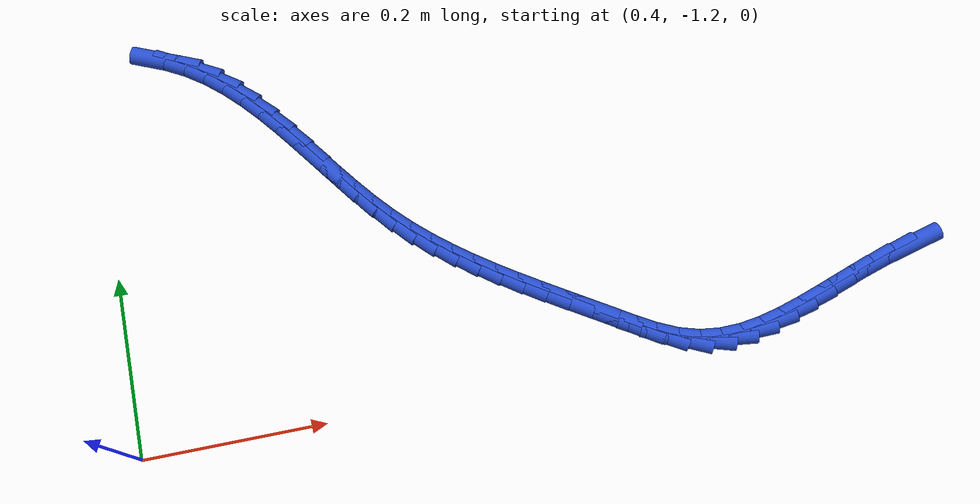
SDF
<sdf version="1.6">
 <world name="default">
  <model name="ground_plane">
   <static>1</static>
   <link name="link">
    <collision name="collision">
     <geometry><plane><normal>0 0 1</normal><size>100 100</size></plane></geometry>
     <surface><friction><ode><mu>100</mu><mu2>50</mu2></ode></friction></surface>
    </collision>
    <visual name="visual">
     <cast_shadows>0</cast_shadows>
     <geometry><plane><normal>0 0 1</normal><size>100 100</size></plane></geometry>
     <material>
      <script><uri>file://media/materials/scripts/gazebo.material</uri><name>Gazebo/WhiteGlow</name></script>
     </material>
    </visual>
   </link>
  </model>
  <model name="line">
   <link name="link_217">
    <pose>1.256067953404397 -1.133034694762733 0.01 0 1.57 0.2588674383470916</pose>
    <collision name="collision">
     <geometry><cylinder><radius>0.01</radius><length>0.08</length></cylinder></geometry>
    </collision>
    <visual name="visual">
     <material>
      <script><name>Gazebo/Blue</name><uri>file://media/materials/scripts/gazebo.material</uri></script>
     </material>
     <geometry><cylinder><radius>0.01</radius><length>0.08</length></cylinder></geometry>
    </visual>
   </link>
   <link name="link_218">
    <pose>1.228334941577375 -1.1403786513357703 0.01 0 1.57 0.30582077177502054</pose>
    <collision name="collision">
     <geometry><cylinder><radius>0.01</radius><length>0.08</length></cylinder></geometry>
    </collision>
    <visual name="visual">
     <material>
      <script><name>Gazebo/Blue</name><uri>file://media/materials/scripts/gazebo.material</uri></script>
     </material>
     <geometry><cylinder><radius>0.01</radius><length>0.08</length></cylinder></geometry>
    </visual>
   </link>
   <link name="link_219">
    <pose>1.201609624626986 -1.1488165175668994 0.01 0 1.57 0.33437206261060864</pose>
    <collision name="collision">
     <geometry><cylinder><radius>0.01</radius><length>0.08</length></cylinder></geometry>
    </collision>
    <visual name="visual">
     <material>
      <script><name>Gazebo/Blue</name><uri>file://media/materials/scripts/gazebo.material</uri></script>
     </material>
     <geometry><cylinder><radius>0.01</radius><length>0.08</length></cylinder></geometry>
    </visual>
   </link>
   <link name="link_220">
    <pose>1.175773861824631 -1.1577923067811169 0.01 0 1.57 0.3432423197108353</pose>
    <collision name="collision">
     <geometry><cylinder><radius>0.01</radius><length>0.08</length></cylinder></geometry>
    </collision>
    <visual name="visual">
     <material>
      <script><name>Gazebo/Blue</name><uri>file://media/materials/scripts/gazebo.material</uri></script>
     </material>
     <geometry><cylinder><radius>0.01</radius><length>0.08</length></cylinder></geometry>
    </visual>
   </link>
   <link name="link_221">
    <pose>1.150709512441711 -1.1667500323034197 0.01 0 1.57 0.33081642744983075</pose>
    <collision name="collision">
     <geometry><cylinder><radius>0.01</radius><length>0.08</length></cylinder></geometry>
    </collision>
    <visual name="visual">
     <material>
      <script><name>Gazebo/Blue</name><uri>file://media/materials/scripts/gazebo.material</uri></script>
     </material>
     <geometry><cylinder><radius>0.01</radius><length>0.08</length></cylinder></geometry>
    </visual>
   </link>
   <link name="link_222">
    <pose>1.1262984357496293 -1.1751337074588064 0.01 0 1.57 0.29494421195318615</pose>
    <collision name="collision">
     <geometry><cylinder><radius>0.01</radius><length>0.08</length></cylinder></geometry>
    </collision>
    <visual name="visual">
     <material>
      <script><name>Gazebo/Blue</name><uri>file://media/materials/scripts/gazebo.material</uri></script>
     </material>
     <geometry><cylinder><radius>0.01</radius><length>0.08</length></cylinder></geometry>
    </visual>
   </link>
   <link name="link_223">
    <pose>1.102422491019786 -1.1823873455722727 0.01 0 1.57 0.23302294589159603</pose>
    <collision name="collision">
     <geometry><cylinder><radius>0.01</radius><length>0.08</length></cylinder></geometry>
    </collision>
    <visual name="visual">
     <material>
      <script><name>Gazebo/Blue</name><uri>file://media/materials/scripts/gazebo.material</uri></script>
     </material>
     <geometry><cylinder><radius>0.01</radius><length>0.08</length></cylinder></geometry>
    </visual>
   </link>
   <link name="link_224">
    <pose>1.0789635375235835 -1.187954959968817 0.01 0 1.57 0.14261707676619337</pose>
    <collision name="collision">
     <geometry><cylinder><radius>0.01</radius><length>0.08</length></cylinder></geometry>
    </collision>
    <visual name="visual">
     <material>
      <script><name>Gazebo/Blue</name><uri>file://media/materials/scripts/gazebo.material</uri></script>
     </material>
     <geometry><cylinder><radius>0.01</radius><length>0.08</length></cylinder></geometry>
    </visual>
   </link>
   <link name="link_225">
    <pose>1.0558034345324232 -1.1912805639734358 0.01 0 1.57 0.022955969754239042</pose>
    <collision name="collision">
     <geometry><cylinder><radius>0.01</radius><length>0.08</length></cylinder></geometry>
    </collision>
    <visual name="visual">
     <material>
      <script><name>Gazebo/Blue</name><uri>file://media/materials/scripts/gazebo.material</uri></script>
     </material>
     <geometry><cylinder><radius>0.01</radius><length>0.08</length></cylinder></geometry>
    </visual>
   </link>
   <link name="link_226">
    <pose>1.0328240413177072 -1.1918081709111272 0.01 0 1.57 -0.12271227933288986</pose>
    <collision name="collision">
     <geometry><cylinder><radius>0.01</radius><length>0.08</length></cylinder></geometry>
    </collision>
    <visual name="visual">
     <material>
      <script><name>Gazebo/Blue</name><uri>file://media/materials/scripts/gazebo.material</uri></script>
     </material>
     <geometry><cylinder><radius>0.01</radius><length>0.08</length></cylinder></geometry>
    </visual>
   </link>
   <link name="link_227">
    <pose>1.0099072171508365 -1.1889817941068876 0.01 0 1.57 -0.2852206664215019</pose>
    <collision name="collision">
     <geometry><cylinder><radius>0.01</radius><length>0.08</length></cylinder></geometry>
    </collision>
    <visual name="visual">
     <material>
      <script><name>Gazebo/Blue</name><uri>file://media/materials/scripts/gazebo.material</uri></script>
     </material>
     <geometry><cylinder><radius>0.01</radius><length>0.08</length></cylinder></geometry>
    </visual>
   </link>
   <link name="link_228">
    <pose>0.9869348665987684 -1.182245951155292 0.01 0 1.57 -0.4340985839575347</pose>
    <collision name="collision">
     <geometry><cylinder><radius>0.01</radius><length>0.08</length></cylinder></geometry>
    </collision>
    <visual name="visual">
     <material>
      <script><name>Gazebo/Blue</name><uri>file://media/materials/scripts/gazebo.material</uri></script>
     </material>
     <geometry><cylinder><radius>0.01</radius><length>0.08</length></cylinder></geometry>
    </visual>
   </link>
   <link name="link_229">
    <pose>0.9638329952323135 -1.1715361304471055 0.01 0 1.57 -0.5222238966851561</pose>
    <collision name="collision">
     <geometry><cylinder><radius>0.01</radius><length>0.08</length></cylinder></geometry>
    </collision>
    <visual name="visual">
     <material>
      <script><name>Gazebo/Blue</name><uri>file://media/materials/scripts/gazebo.material</uri></script>
     </material>
     <geometry><cylinder><radius>0.01</radius><length>0.08</length></cylinder></geometry>
    </visual>
   </link>
   <link name="link_230">
    <pose>0.9406541202397857 -1.1581962579174019 0.01 0 1.57 -0.5551013860419267</pose>
    <collision name="collision">
     <geometry><cylinder><radius>0.01</radius><length>0.08</length></cylinder></geometry>
    </collision>
    <visual name="visual">
     <material>
      <script><name>Gazebo/Blue</name><uri>file://media/materials/scripts/gazebo.material</uri></script>
     </material>
     <geometry><cylinder><radius>0.01</radius><length>0.08</length></cylinder></geometry>
    </visual>
   </link>
   <link name="link_231">
    <pose>0.9174733055958375 -1.1438207618676348 0.01 0 1.57 -0.5518493781717017</pose>
    <collision name="collision">
     <geometry><cylinder><radius>0.01</radius><length>0.08</length></cylinder></geometry>
    </collision>
    <visual name="visual">
     <material>
      <script><name>Gazebo/Blue</name><uri>file://media/materials/scripts/gazebo.material</uri></script>
     </material>
     <geometry><cylinder><radius>0.01</radius><length>0.08</length></cylinder></geometry>
    </visual>
   </link>
   <link name="link_232">
    <pose>0.894368009353113 -1.129595924766891 0.01 0 1.57 -0.5491181605492208</pose>
    <collision name="collision">
     <geometry><cylinder><radius>0.01</radius><length>0.08</length></cylinder></geometry>
    </collision>
    <visual name="visual">
     <material>
      <script><name>Gazebo/Blue</name><uri>file://media/materials/scripts/gazebo.material</uri></script>
     </material>
     <geometry><cylinder><radius>0.01</radius><length>0.08</length></cylinder></geometry>
    </visual>
   </link>
   <link name="link_233">
    <pose>0.871422448786333 -1.1155557072584368 0.01 0 1.57 -0.5533805407300937</pose>
    <collision name="collision">
     <geometry><cylinder><radius>0.01</radius><length>0.08</length></cylinder></geometry>
    </collision>
    <visual name="visual">
     <material>
      <script><name>Gazebo/Blue</name><uri>file://media/materials/scripts/gazebo.material</uri></script>
     </material>
     <geometry><cylinder><radius>0.01</radius><length>0.08</length></cylinder></geometry>
    </visual>
   </link>
   <link name="link_234">
    <pose>0.8487220255588125 -1.1015321537277123 0.01 0 1.57 -0.5648007318745383</pose>
    <collision name="collision">
     <geometry><cylinder><radius>0.01</radius><length>0.08</length></cylinder></geometry>
    </collision>
    <visual name="visual">
     <material>
      <script><name>Gazebo/Blue</name><uri>file://media/materials/scripts/gazebo.material</uri></script>
     </material>
     <geometry><cylinder><radius>0.01</radius><length>0.08</length></cylinder></geometry>
    </visual>
   </link>
   <link name="link_235">
    <pose>0.8263521413338675 -1.0873573085601598 0.01 0 1.57 -0.5835154455594816</pose>
    <collision name="collision">
     <geometry><cylinder><radius>0.01</radius><length>0.08</length></cylinder></geometry>
    </collision>
    <visual name="visual">
     <material>
      <script><name>Gazebo/Blue</name><uri>file://media/materials/scripts/gazebo.material</uri></script>
     </material>
     <geometry><cylinder><radius>0.01</radius><length>0.08</length></cylinder></geometry>
    </visual>
   </link>
   <link name="link_236">
    <pose>0.8043981977748128 -1.0728632161412184 0.01 0 1.57 -0.6096136879748725</pose>
    <collision name="collision">
     <geometry><cylinder><radius>0.01</radius><length>0.08</length></cylinder></geometry>
    </collision>
    <visual name="visual">
     <material>
      <script><name>Gazebo/Blue</name><uri>file://media/materials/scripts/gazebo.material</uri></script>
     </material>
     <geometry><cylinder><radius>0.01</radius><length>0.08</length></cylinder></geometry>
    </visual>
   </link>
   <link name="link_237">
    <pose>0.7829455965449643 -1.05788192085633 0.01 0 1.57 -0.6431041191485464</pose>
    <collision name="collision">
     <geometry><cylinder><radius>0.01</radius><length>0.08</length></cylinder></geometry>
    </collision>
    <visual name="visual">
     <material>
      <script><name>Gazebo/Blue</name><uri>file://media/materials/scripts/gazebo.material</uri></script>
     </material>
     <geometry><cylinder><radius>0.01</radius><length>0.08</length></cylinder></geometry>
    </visual>
   </link>
   <link name="link_238">
    <pose>0.7620797393076378 -1.0422454670909356 0.01 0 1.57 -0.6838709680413535</pose>
    <collision name="collision">
     <geometry><cylinder><radius>0.01</radius><length>0.08</length></cylinder></geometry>
    </collision>
    <visual name="visual">
     <material>
      <script><name>Gazebo/Blue</name><uri>file://media/materials/scripts/gazebo.material</uri></script>
     </material>
     <geometry><cylinder><radius>0.01</radius><length>0.08</length></cylinder></geometry>
    </visual>
   </link>
   <link name="link_239">
    <pose>0.7418860277261484 -1.0257858992304754 0.01 0 1.57 -0.7316224958300694</pose>
    <collision name="collision">
     <geometry><cylinder><radius>0.01</radius><length>0.08</length></cylinder></geometry>
    </collision>
    <visual name="visual">
     <material>
      <script><name>Gazebo/Blue</name><uri>file://media/materials/scripts/gazebo.material</uri></script>
     </material>
     <geometry><cylinder><radius>0.01</radius><length>0.08</length></cylinder></geometry>
    </visual>
   </link>
   <link name="link_240">
    <pose>0.722449863463812 -1.0083352616603907 0.01 0 1.57 -0.7858401378769845</pose>
    <collision name="collision">
     <geometry><cylinder><radius>0.01</radius><length>0.08</length></cylinder></geometry>
    </collision>
    <visual name="visual">
     <material>
      <script><name>Gazebo/Blue</name><uri>file://media/materials/scripts/gazebo.material</uri></script>
     </material>
     <geometry><cylinder><radius>0.01</radius><length>0.08</length></cylinder></geometry>
    </visual>
   </link>
   <link name="link_241">
    <pose>0.7038566463166868 -0.9897256017899877 0.01 0 1.57 -0.8418278985164931</pose>
    <collision name="collision">
     <geometry><cylinder><radius>0.01</radius><length>0.08</length></cylinder></geometry>
    </collision>
    <visual name="visual">
     <material>
      <script><name>Gazebo/Blue</name><uri>file://media/materials/scripts/gazebo.material</uri></script>
     </material>
     <geometry><cylinder><radius>0.01</radius><length>0.08</length></cylinder></geometry>
    </visual>
   </link>
   <link name="link_242">
    <pose>0.6861346390274398 -0.9698814957190578 0.01 0 1.57 -0.8851807385642804</pose>
    <collision name="collision">
     <geometry><cylinder><radius>0.01</radius><length>0.08</length></cylinder></geometry>
    </collision>
    <visual name="visual">
     <material>
      <script><name>Gazebo/Blue</name><uri>file://media/materials/scripts/gazebo.material</uri></script>
     </material>
     <geometry><cylinder><radius>0.01</radius><length>0.08</length></cylinder></geometry>
    </visual>
   </link>
   <link name="link_243">
    <pose>0.6691050894229739 -0.949062762930258 0.01 0 1.57 -0.9134387293183155</pose>
    <collision name="collision">
     <geometry><cylinder><radius>0.01</radius><length>0.08</length></cylinder></geometry>
    </collision>
    <visual name="visual">
     <material>
      <script><name>Gazebo/Blue</name><uri>file://media/materials/scripts/gazebo.material</uri></script>
     </material>
     <geometry><cylinder><radius>0.01</radius><length>0.08</length></cylinder></geometry>
    </visual>
   </link>
   <link name="link_244">
    <pose>0.652542376342829 -0.9276051233205568 0.01 0 1.57 -0.9272694013628036</pose>
    <collision name="collision">
     <geometry><cylinder><radius>0.01</radius><length>0.08</length></cylinder></geometry>
    </collision>
    <visual name="visual">
     <material>
      <script><name>Gazebo/Blue</name><uri>file://media/materials/scripts/gazebo.material</uri></script>
     </material>
     <geometry><cylinder><radius>0.01</radius><length>0.08</length></cylinder></geometry>
    </visual>
   </link>
   <link name="link_245">
    <pose>0.636220878626545 -0.9058442967869215 0.01 0 1.57 -0.9270100592268679</pose>
    <collision name="collision">
     <geometry><cylinder><radius>0.01</radius><length>0.08</length></cylinder></geometry>
    </collision>
    <visual name="visual">
     <material>
      <script><name>Gazebo/Blue</name><uri>file://media/materials/scripts/gazebo.material</uri></script>
     </material>
     <geometry><cylinder><radius>0.01</radius><length>0.08</length></cylinder></geometry>
    </visual>
   </link>
   <link name="link_246">
    <pose>0.6199149751136623 -0.8841160032263201 0.01 0 1.57 -0.9126016324587678</pose>
    <collision name="collision">
     <geometry><cylinder><radius>0.01</radius><length>0.08</length></cylinder></geometry>
    </collision>
    <visual name="visual">
     <material>
      <script><name>Gazebo/Blue</name><uri>file://media/materials/scripts/gazebo.material</uri></script>
     </material>
     <geometry><cylinder><radius>0.01</radius><length>0.08</length></cylinder></geometry>
    </visual>
   </link>
   <link name="link_247">
    <pose>0.6033990446437212 -0.8627559625357208 0.01 0 1.57 -0.8835850334797722</pose>
    <collision name="collision">
     <geometry><cylinder><radius>0.01</radius><length>0.08</length></cylinder></geometry>
    </collision>
    <visual name="visual">
     <material>
      <script><name>Gazebo/Blue</name><uri>file://media/materials/scripts/gazebo.material</uri></script>
     </material>
     <geometry><cylinder><radius>0.01</radius><length>0.08</length></cylinder></geometry>
    </visual>
   </link>
   <link name="link_248">
    <pose>0.5864474660562621 -0.8420998946120916 0.01 0 1.57 -0.8391622874205212</pose>
    <collision name="collision">
     <geometry><cylinder><radius>0.01</radius><length>0.08</length></cylinder></geometry>
    </collision>
    <visual name="visual">
     <material>
      <script><name>Gazebo/Blue</name><uri>file://media/materials/scripts/gazebo.material</uri></script>
     </material>
     <geometry><cylinder><radius>0.01</radius><length>0.08</length></cylinder></geometry>
    </visual>
   </link>
   <link name="link_249">
    <pose>0.5688346181908239 -0.8224835193523992 0.01 0 1.57 -0.7783549846055117</pose>
    <collision name="collision">
     <geometry><cylinder><radius>0.01</radius><length>0.08</length></cylinder></geometry>
    </collision>
    <visual name="visual">
     <material>
      <script><name>Gazebo/Blue</name><uri>file://media/materials/scripts/gazebo.material</uri></script>
     </material>
     <geometry><cylinder><radius>0.01</radius><length>0.08</length></cylinder></geometry>
    </visual>
   </link>
   <link name="link_250">
    <pose>0.5503348798869477 -0.8042425566536126 0.01 0 1.57 -0.7003178765517503</pose>
    <collision name="collision">
     <geometry><cylinder><radius>0.01</radius><length>0.08</length></cylinder></geometry>
    </collision>
    <visual name="visual">
     <material>
      <script><name>Gazebo/Blue</name><uri>file://media/materials/scripts/gazebo.material</uri></script>
     </material>
     <geometry><cylinder><radius>0.01</radius><length>0.08</length></cylinder></geometry>
    </visual>
   </link>
   <link name="link_251">
    <pose>0.5307226299841733 -0.7877127264126991 0.01 0 1.57 -0.6048624431274687</pose>
    <collision name="collision">
     <geometry><cylinder><radius>0.01</radius><length>0.08</length></cylinder></geometry>
    </collision>
    <visual name="visual">
     <material>
      <script><name>Gazebo/Blue</name><uri>file://media/materials/scripts/gazebo.material</uri></script>
     </material>
     <geometry><cylinder><radius>0.01</radius><length>0.08</length></cylinder></geometry>
    </visual>
   </link>
   <link name="link_252">
    <pose>0.509772247322041 -0.7732297485266267 0.01 0 1.57 -0.4944747215710674</pose>
    <collision name="collision">
     <geometry><cylinder><radius>0.01</radius><length>0.08</length></cylinder></geometry>
    </collision>
    <visual name="visual">
     <material>
      <script><name>Gazebo/Blue</name><uri>file://media/materials/scripts/gazebo.material</uri></script>
     </material>
     <geometry><cylinder><radius>0.01</radius><length>0.08</length></cylinder></geometry>
    </visual>
   </link>
   <link name="link_253">
    <pose>0.4872764447035076 -0.7611011426292977 0.01 0 1.57 -0.39449115810490076</pose>
    <collision name="collision">
     <geometry><cylinder><radius>0.01</radius><length>0.08</length></cylinder></geometry>
    </collision>
    <visual name="visual">
     <material>
      <script><name>Gazebo/Blue</name><uri>file://media/materials/scripts/gazebo.material</uri></script>
     </material>
     <geometry><cylinder><radius>0.01</radius><length>0.08</length></cylinder></geometry>
    </visual>
   </link>
  </model>
 </world>
</sdf>
